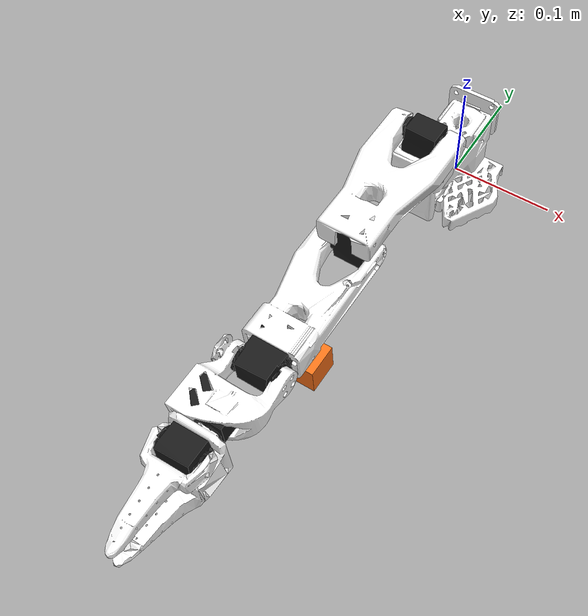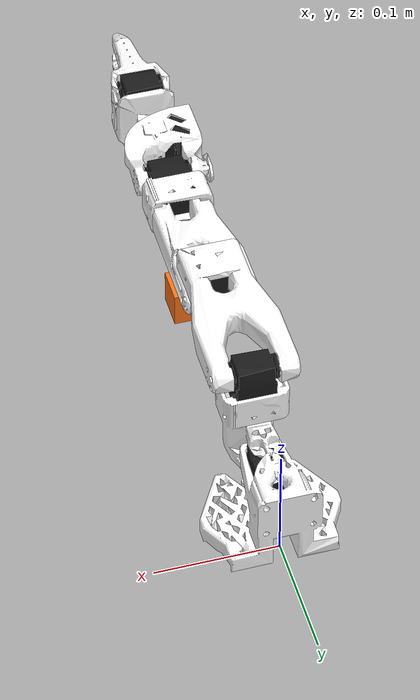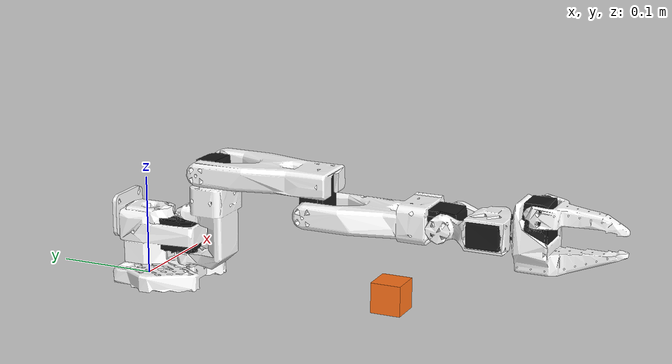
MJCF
<mujoco model="so100">
  <compiler angle="radian" meshdir="assets/"/>

  <option timestep="0.002" cone="elliptic" impratio="10"/>

  <asset>
    <material name="white" rgba="1 1 1 1"/>
    <material name="black" rgba="0.1 0.1 0.1 1"/>

    <mesh name="Base" file="Base.stl"/>
    <mesh name="Base_Motor" file="Base_Motor.stl"/>
    <mesh name="Rotation_Pitch" file="Rotation_Pitch.stl"/>
    <mesh name="Rotation_Pitch_Motor" file="Rotation_Pitch_Motor.stl"/>
    <mesh name="Upper_Arm" file="Upper_Arm.stl"/>
    <mesh name="Upper_Arm_Motor" file="Upper_Arm_Motor.stl"/>
    <mesh name="Lower_Arm" file="Lower_Arm.stl"/>
    <mesh name="Lower_Arm_Motor" file="Lower_Arm_Motor.stl"/>
    <mesh name="Wrist_Pitch_Roll" file="Wrist_Pitch_Roll.stl"/>
    <mesh name="Wrist_Pitch_Roll_Motor" file="Wrist_Pitch_Roll_Motor.stl"/>
    <mesh name="Fixed_Jaw" file="Fixed_Jaw.stl"/>
    <mesh name="Fixed_Jaw_Motor" file="Fixed_Jaw_Motor.stl"/>
    <!-- Collision hulls, inlined by training/scripts/make_hulls.py (one less request each). -->
    <mesh name="Base_Hull" vertex="0.024927677 -0.071374066 0.00077929957 -0.051675427 -0.03444973 0.0024000003 -0.032790926 -0.069750002 1.015413e-09 0.055119155 -0.02047393 3.7006064e-10 0.03325 -0.068954864 -9.9579804e-10 0.054785944 -0.031896445 7.2082198e-07 -0.054062499 -0.018701142 0.0023999993 -0.055540949 -0.029935604 0.013667808 0.042930455 0.014750001 0.013499999 0.05532086 -0.02091657 0.012954884 0.054790084 -0.030886555 0.014461176 0.041722099 0.015809699 0.0015432911 0.01499413 -0.060162288 0.053879995 -0.012608708 -0.058559531 0.058048823 -0.030398296 -0.071076557 0.014222772 0.027958681 -0.070979431 0.014680025 0.032531874 -0.069565244 0.01434164 0.01855 0.020899999 0.083496443 -0.019673967 0.020900002 0.083442527 -0.0032020059 -0.030074627 0.074037447 0.015184885 -0.056350829 0.058158805 0.023499748 0.020899999 0.081446193 -0.04201539 0.015665065 0.013499999 -0.055201503 -0.020933788 0.014017085 -0.042533157 0.015267767 0.00073223286 -0.025329722 0.024900002 0.047128678 -0.01845 0.024900003 0.083496446 -0.023942665 0.0249 0.080920972 0.025335892 0.0249 0.046265039 -0.018449999 0.024900001 0.041496449 0.025197805 0.024899999 0.079360387 0.019362359 0.024900002 0.082009958" face="31 17 21 14 13 7 14 2 0 2 14 7 11 3 24 3 2 24 20 19 13 2 6 24 19 18 13 2 4 0 3 4 2 5 3 9 5 4 3 10 5 9 20 10 21 29 11 24 13 27 7 18 27 13 29 28 11 15 14 0 4 15 0 1 2 7 6 1 7 1 6 2 3 8 9 8 3 11 16 10 20 16 15 4 5 16 4 10 16 5 23 6 7 27 23 7 6 23 24 8 30 9 30 10 9 10 30 21 30 31 21 28 30 11 30 8 11 12 20 13 14 12 13 15 12 14 12 16 20 16 12 15 26 27 18 25 29 24 17 18 19 17 20 21 17 19 20 26 17 31 17 26 18 23 22 24 22 23 27 25 22 27 22 25 24 26 25 27 25 28 29 25 30 28 30 25 31 25 26 31"/>
    <mesh name="Rotation_Pitch_Hull" vertex="-0.021920228 0.085824132 0.016171226 -0.0091350356 0.050424367 -0.0088905108 0.019713447 0.011890187 0.041461128 -0.016710237 0.014735685 0.0478 -0.012724266 0.0020987046 -0.00075005683 -0.0002792762 0.054629602 -0.010990652 0.026734697 0.072451272 0.020465005 -0.02604409 0.058930032 0.021257645 -0.019862164 0.012001488 0.043332048 -0.0263 0.085299997 0.023200003 0.025964151 0.085702181 0.02219782 0.019873788 0.086299994 0.013919106 0.022970091 0.059300002 0.049146827 0.025967917 0.059262004 0.04427997 0.017398222 0.01345261 0.047613841 0.022099999 0.085299999 0.049728204 0.024446826 0.085299999 0.047670092 0.014311329 0.0020885325 0.035109267 -0.014476313 0.002125479 0.035184297 -0.024646825 0.085299997 0.047670092 -0.020215716 0.085727414 0.050605889 -0.026299999 0.085299999 0.042799998 -0.022585124 0.072299995 0.051489137 -0.0263 0.059300002 0.042799998 0.0065641003 0.0060707475 -0.010045526 0.0050566222 0.051800001 -0.010882581 -0.0017459566 0.010790005 -0.012657677 0.010444754 0.0020331982 -0.0063875643 0.0014369616 1.0015385e-09 -0.0098962175 0.0100726 7.9583804e-10 0.00044031935 0.0034503603 -6.3873746e-10 -0.00095791243 -0.0031600976 -1.6757728e-09 -0.0095741794" face="22 12 15 0 11 5 20 22 15 11 20 15 20 0 21 0 20 11 31 4 26 7 4 8 1 5 26 1 0 5 4 1 26 7 1 4 11 10 6 10 13 6 22 3 14 3 22 8 0 9 21 1 9 0 9 1 7 17 2 14 2 13 14 13 2 6 2 27 6 2 17 27 18 3 8 4 18 8 18 17 14 3 18 14 31 18 4 18 31 30 5 25 26 11 25 5 25 11 6 27 25 6 23 7 8 22 23 8 9 23 21 23 9 7 16 13 10 16 11 15 16 10 11 13 12 14 12 22 14 12 16 15 16 12 13 17 29 27 29 18 30 18 29 17 19 20 21 20 19 22 23 19 21 19 23 22 28 31 26 29 28 27 25 24 26 24 25 27 24 28 26 28 24 27 28 29 30 31 28 30"/>
    <mesh name="Upper_Arm_Hull" vertex="-0.032575164 3.2099424e-09 0.011281381 0.034230128 0.035516788 0.0094999992 0.034990552 0.0035796119 0.0020283724 0.018183951 -0.010764878 -0.0065781136 0.033036207 -0.0027568296 -0.010825379 0.032656766 -0.011623137 -0.00027316368 0.025689256 -0.00091617544 -0.012273436 -0.02492963 0.12816997 -0.0082940962 -0.035021319 0.035554748 0.0079499258 -0.021748541 0.12844972 0.012306713 -0.023611125 0.13028571 0.0073075059 0.0078999995 0.13044824 -0.0068955673 -0.0201 0.12990202 -0.010999998 0.027906078 -0.0017552479 0.012291368 0.026646402 0.038616884 0.016806995 0.03341858 -0.0036912037 0.010065113 -0.034981475 -0.0023157282 -0.0078762017 -0.034963796 0.048559372 -0.008159077 -0.035397292 -0.0056627945 -0.0010262428 -0.032769006 -0.0079437397 -0.0083160225 -0.031645083 2.640454e-09 -0.011755286 0.024230126 0.12816997 -0.0095000021 0.0249 0.12486406 -0.0057798381 0.034129228 0.048484821 -0.009450411 0.020837834 0.12808038 -0.011953855 0.023209124 0.13017277 -0.0069803449 0.022971745 0.12918446 0.011466994 -0.018988635 -0.011241573 0.0072432373 -0.03335811 -0.0089008061 0.0067122359 -0.018724974 -0.0056582295 0.011056866 0.018461865 -0.011539109 0.0060156838 -0.018617865 -0.01154101 -0.0060181691" face="15 5 2 26 9 14 9 0 14 0 29 14 0 28 29 20 24 6 24 4 6 4 24 23 5 4 2 4 23 2 19 28 18 19 31 28 19 20 6 8 0 9 8 17 18 28 8 18 8 28 0 15 30 5 30 31 5 1 26 14 15 1 14 1 15 2 23 1 2 1 22 26 22 1 23 12 24 20 12 17 7 17 12 20 3 4 5 31 3 5 4 3 6 3 19 6 19 3 31 10 12 7 10 8 9 12 10 11 17 10 7 8 10 17 26 10 9 10 25 11 25 10 26 25 12 11 12 25 24 29 13 14 13 15 14 30 13 29 13 30 15 17 16 18 16 19 18 16 17 20 19 16 20 21 22 23 24 21 23 25 21 24 22 21 26 21 25 26 28 27 29 27 30 29 31 27 28 30 27 31"/>
    <mesh name="Lower_Arm_Hull" vertex="0.0173 0.02059999 0.11769982 -0.018284021 -0.0083191356 -0.0096299052 -0.023170091 -0.013346823 0.11769982 -0.026011658 0.014340551 0.11832349 -0.020370552 0.020327417 0.11769982 -0.0263 -0.0070000018 0.11769982 -0.016193038 -0.0014253156 0.11920031 -0.03485236 -0.0085540443 0.047771723 0.02249886 -0.013303253 0.11856883 -0.019244837 0.010683496 -0.0073025272 -0.018348485 0.0034312124 -0.011987586 -0.031176704 -0.011633006 -0.0025993797 -0.0020999984 -0.015363266 0.098286355 0.021445084 0.0026157919 -0.011460552 0.02108223 0.01178036 -0.0029528268 0.021312637 0.021899908 0.092585503 0.025183579 0.015685339 0.11843057 0.025003771 -0.0076833985 0.0035505519 0.024250196 0.0057115873 -0.0076929857 0.02249218 -0.0089980012 -0.0072713373 0.025035095 0.0041249157 -0.0016926971 0.025934758 -0.0078214239 0.11831389 0.023993705 -0.014681011 0.10469986 0.02706469 0.0085634347 0.10140561 0.019988003 -0.011839706 -0.00044881392 -0.033161387 -0.0070653555 -0.0091508521 -0.035050088 0.0076816903 -0.0031773805 -0.034856294 0.0083208751 0.035708495 -0.032227188 0.011406867 -0.0021434633 -0.030100001 0.0036842796 -0.011344307 -0.034855279 -2.6323096e-09 -0.008545087 -0.035189398 -0.00095900558 -0.0048958286" face="15 28 4 22 8 12 8 2 12 8 16 6 2 8 6 2 11 12 28 15 14 7 11 2 28 27 4 7 27 31 16 0 4 0 15 4 15 0 16 11 1 19 1 13 19 13 1 10 25 1 11 25 7 31 7 25 11 1 25 10 25 29 10 5 7 2 5 2 6 27 3 4 3 5 6 3 27 7 5 3 7 16 3 6 3 16 4 20 16 23 21 8 22 16 21 23 8 21 16 9 28 14 13 9 14 9 13 10 9 29 28 29 9 10 24 11 19 24 22 12 11 24 12 18 13 14 15 18 14 13 18 19 18 15 16 20 18 16 18 17 19 17 18 20 17 21 22 17 20 23 21 17 23 17 24 19 24 17 22 30 25 31 30 29 25 26 27 28 29 26 28 30 26 29 27 26 31 26 30 31"/>
    <mesh name="Wrist_Pitch_Roll_Hull" vertex="-0.035214152 -0.060872197 -0.012460387 0.026781952 0.011586651 -0.0028175892 0.01809992 0.01186896 -0.0030974127 0.026528642 0.011751637 0.0022962802 -0.035131067 -0.025326033 0.014524886 -0.035522972 -0.025767685 0.0095693043 -0.032800001 0.0078583332 0.0090689897 -0.032800001 0.0030618186 0.011679067 -0.035199999 0.012076457 0.0012139991 0.026389519 0.0093551392 0.0076566707 -0.022187331 0.0028974066 -0.012342451 -0.034400001 0.0077235274 -0.009528218 -0.034878888 -0.025420595 -0.014840832 0.026597605 0.0054493065 -0.010656254 0.028055677 -0.029307391 -0.0066325817 0.0012604685 -0.029978202 0.016176684 -0.017105868 -0.061940406 0.01482437 0.0026790066 -0.055824913 0.015612687 -0.03509282 -0.062292819 0.014599988 -0.0093543546 -0.06041186 0.013268672 -0.017471152 -0.062255368 -0.012929793 0.010375337 -0.052477408 -0.015173015 0.015063908 -0.050384134 -0.01287261 -0.0016196439 -0.057848159 -0.015174712 0.00084158164 -0.034529704 -0.016015646 0.0075342431 -0.054207206 0.012907489 0.025284784 -0.039128415 0.011174288 0.026198118 -0.036348693 -0.010926688 0.027443896 -0.03307205 0.0092117009 0.018867499 -0.046521715 0.014080104 0.0263 0.0024129416 0.01175491 0.021047394 -0.044639003 -0.013341939" face="4 7 8 23 12 24 0 12 23 0 18 5 8 0 5 12 0 8 11 12 8 13 31 24 20 0 23 19 20 23 0 20 18 15 29 30 7 15 30 28 9 30 9 3 8 9 28 14 2 11 8 3 2 8 11 2 13 2 1 13 1 2 3 13 1 14 1 9 14 9 1 3 22 31 29 18 4 5 4 8 5 15 4 18 4 15 7 7 6 8 6 9 8 6 7 30 9 6 30 10 11 13 11 10 12 10 13 24 12 10 24 25 22 29 25 19 23 27 13 14 27 31 13 28 27 14 17 15 18 15 17 29 17 25 29 25 17 19 16 17 18 17 16 19 20 16 18 16 20 19 22 21 31 21 23 24 31 21 24 21 25 23 25 21 22 26 27 28 29 26 30 26 28 30 31 26 29 27 26 31"/>
    <mesh name="Fixed_Jaw_Collision_1" vertex="0.0352 -0.036603112 0.014730104 0.0352 -0.036603112 -0.014730104 0.0352 -0.047065668 -0.011963805 0.0352 -0.047065668 0.011963805 0.016898798 -0.036603111 0.016453406 0.016898798 -0.036603112 -0.016453405 0.014672209 -0.10174749 0.005289707 0.014672209 -0.10174749 -0.0052897067 0.0095524516 -0.10174749 -0.0052897066 0.0095524514 -0.10174749 0.0052897066 0.013427908 -0.10505871 0.0035034052 0.012912502 -0.10643025 4.7078302e-16 0.0090447078 -0.10643025 1.1248376e-14 0.0091934217 -0.10505871 0.0035034053 0.0091934212 -0.10505871 -0.0035034052 0.013427907 -0.10505871 -0.0035034054" face="7 1 2 1 7 5 0 6 3 6 0 4 9 6 4 7 8 5 13 14 12 15 10 11 1 0 2 2 0 3 4 0 5 0 1 5 6 2 3 6 7 2 8 4 5 8 9 4 11 10 12 10 13 12 13 10 9 10 6 9 8 14 9 14 13 9 15 11 12 14 15 12 15 14 8 15 8 7 6 15 7 10 15 6"/>
    <mesh name="Fixed_Jaw_Collision_2" vertex="0.034971641 -0.03891445 0.013885984 -0.019999999 -0.006228365 -0.022148049 0.0048481157 -0.029354282 -0.023988223 -0.025880647 -0.032629841 -0.017600006 0.03432132 -0.0075000007 0.014500001 0.016329357 -0.0075284168 0.023555468 0.03334805 -0.0070401502 0.014959851 -0.019999999 -0.007528462 0.023555497 -0.022029684 -0.0068786821 0.022892633 0.03432132 -0.039533399 0.014637092 0.034798074 -0.039642207 0.013797561 0.018490763 -0.036000006 0.022207508 0.034971641 -0.008560666 0.014060655 0.03497164 -0.0079393468 0.013439337 0.03497164 -0.0081882108 0.013811807 0.03497164 -0.0079393475 -0.013439333 0.007239794 -0.038983964 -0.019101685 0.018032501 -0.038598083 -0.02060168 -0.029749279 -0.0089999971 0.016225199 -0.025080227 -0.0062283653 0.020370403 -0.023535308 -0.0062283653 0.021341154 0.033348051 -0.0079393469 -0.015560662 0.016460759 -0.0082235418 -0.023897773 0.034321319 -0.0070401503 0.013811806 0.032200001 -0.0062283646 0.014148036 0.03334805 -0.0064393354 0.014060656 0.03432132 -0.0075000011 -0.014499998 0.034321319 -0.0081882112 -0.014959848 0.03497164 -0.0081882118 -0.013811788 0.034971641 -0.0085606658 -0.014060666 0.034321319 -0.0070401514 -0.013811788 0.033348051 -0.0070401516 -0.014959848 0.015924204 -0.0064019191 -0.022499999 -0.021813112 -0.0062283654 0.021943757 0.033348049 -0.039120711 0.015608677 0.034321321 -0.038901009 0.014996597 0.034971639 -0.038572215 0.014080564 0.03334805 -0.0079393478 0.015560666 0.034321319 -0.0081882116 0.014959851 0.035190022 -0.03464935 -0.013244456 0.035189979 -0.014150792 -0.013245007 -0.02905456 -0.029047229 0.018799999 0.0091144627 -0.036899946 0.021963517 0.033348049 -0.039946951 0.015138992 0.0337 -0.040217542 0.014732847 0.018259342 -0.038080282 0.021192619 0.017897401 -0.038771637 0.020249733 -0.0046423053 -0.029346205 0.023990402 -0.0022280687 -0.036776461 0.021999457 0.018569059 -0.036776461 0.021999458 -0.025880647 -0.03262984 0.018800001 -0.027685107 -0.031031228 0.0188 0.0069029977 -0.038058631 -0.021185911 0.0071513567 -0.038740986 -0.02025426 0.0075495654 -0.038718917 -0.020369535 0.0065423192 -0.037067674 -0.021718076 -0.023746049 -0.033750169 -0.017600005 0.0075495652 -0.037928365 -0.021399816 0.013014614 -0.036874942 -0.021971261 0.0075495654 -0.03677646 -0.021999454 -0.021813111 -0.0062283656 -0.021943768 -0.027943762 -0.0062283651 -0.015813118 -0.027685107 -0.031031228 -0.017600006 -0.022174395 -0.010148057 -0.023526644 -0.029054559 -0.029047229 -0.017600005 -0.022225211 -0.0089999969 0.023749271 -0.029909419 -0.02679316 0.0188 -0.0302 -0.024400003 0.018799999 0.035098334 -0.014680632 -0.013774371 -0.019999999 -0.0068786818 -0.023121319 0.016345715 -0.007500001 -0.023598081 0.03334805 -0.0064393352 -0.014060667 0.032200002 -0.0062283648 -0.014148047 0.018338876 -0.037928365 0.021399806 -0.0022280686 -0.038999997 0.019101688 -0.0026225637 -0.03897395 0.019101689 0.034971638 -0.03891445 -0.013885996 0.035098328 -0.034119286 -0.0137744 -0.025687051 -0.0068786823 -0.021131343 -0.025080227 -0.0062283656 -0.020370399 -0.023535307 -0.0062283656 -0.021341136 -0.028218027 -0.0068786814 -0.017957588 -0.028892629 -0.0068786825 -0.016029691 -0.027131336 -0.0068786817 -0.019687047 -0.027341141 -0.0062283655 -0.017535305 -0.026370402 -0.0062283656 -0.019080227 -0.029749281 -0.008999997 -0.01622521 -0.029526642 -0.0078519521 -0.016174397 -0.029009689 -0.0089999971 -0.018338835 -0.028803941 -0.0078519518 -0.018239757 -0.028892632 -0.0068786818 0.016029695 -0.029526645 -0.0078519515 0.016174385 -0.022174394 -0.0078519521 -0.023526644 -0.02222521 -0.0089999971 -0.023749283 -0.02 -0.0078519519 -0.023771634 -0.024239756 -0.0078519519 -0.022803938 -0.023957593 -0.0068786818 -0.022218024 -0.022029684 -0.0068786815 -0.02289263 -0.02 -0.0075284617 -0.023555493 -0.026234898 -0.0089999965 -0.021818315 -0.024338838 -0.0089999966 -0.023009693 -0.026092519 -0.007851952 -0.021639769 -0.027639775 -0.0078519515 -0.020092524 -0.027818314 -0.0089999964 -0.020234904 -0.030200002 -0.024400003 -0.017600005 -0.02990942 -0.02679316 -0.017600006 -0.027639774 -0.0078519521 0.020092527 -0.026234898 -0.0089999967 0.02181832 -0.027818314 -0.0089999964 0.020234892 -0.029009687 -0.0089999971 0.018338839 -0.028803942 -0.0078519517 0.018239745 -0.027131336 -0.0068786824 0.019687036 -0.024239757 -0.0078519512 0.022803941 -0.024338837 -0.0089999966 0.023009697 -0.022174394 -0.0078519522 0.023526649 -0.026092518 -0.007851952 0.021639773 -0.023957593 -0.0068786822 0.022218028 -0.025687049 -0.006878682 0.021131346 -0.0029265794 -0.038038291 0.021189133 -0.0022280686 -0.037957571 0.021361747 -0.0022280687 -0.037928365 0.021399805 -0.0027023757 -0.038728318 0.020255515 -0.0022280686 -0.038718917 0.02036954 -0.02374605 -0.033750169 0.018799999 -0.0032523839 -0.037035562 0.021724353 0.034971638 -0.038572215 -0.014080545 -0.02734114 -0.0062283658 0.017535308 -0.028218024 -0.0068786816 0.017957607 -0.026370403 -0.0062283655 0.019080232 -0.027943761 -0.0062283659 0.015813122 0.033348048 -0.039120712 -0.015608689 0.033348049 -0.039946951 -0.015138975 0.018490763 -0.036000006 -0.022207505 0.018569058 -0.03677646 -0.021999455 0.018454013 -0.037500002 -0.021699762 0.034321318 -0.039533399 -0.014637103 0.034798073 -0.039642207 -0.013797572 0.033700002 -0.040217541 -0.014732858 0.034321318 -0.038901009 -0.014996594 0.016499999 -0.0089999965 -0.023999994 0.033348052 -0.038184367 -0.015771633 0.0165 -0.029310338 -0.023999994 0.03334805 -0.0089999972 -0.015771633 0.034971638 -0.0078519517 -0.013000002 0.035200001 -0.0089999967 -0.013000003 0.035200001 -0.0089999965 0.012999991 0.03497164 -0.0078519525 0.012999991 -0.030400001 -0.033799999 0.014500001 -0.027399999 -0.036800004 0.014500002 -0.0274 -0.036800005 -0.014299994 -0.0304 -0.033799998 -0.014299994 -0.0304 -0.014999994 0.014500002 -0.030399999 -0.014999994 -0.014299994 -0.02 -0.0089999968 0.023999998 0.0165 -0.029310338 0.023999999 -0.0044016731 -0.029310338 0.023999998 0.0165 -0.0089999968 0.023999998 0.01641234 -0.007851952 0.023771653 -0.019999999 -0.0078519513 0.023771654 -0.019999999 -0.0089999967 -0.023999994 0.0051147253 -0.029310338 -0.023999994 -0.016 -0.014751592 -0.023999994 0.011123148 -0.00099999462 -0.0045028387 0.003077155 7.2794501e-09 -0.011598757 0.0030771549 5.911458e-09 0.011598745 0.011123148 -0.00099999567 0.0045028418 -0.02 -0.0062283656 0.022148052 -0.019999999 -0.0068786817 0.023121306 0.016162707 -0.0068786828 0.023121306 0.015789103 -0.0062283651 0.022148053 0.035198332 -0.033925005 0.013100008 0.035200001 -0.038184367 0.012999991 0.03519833 -0.014875003 0.013100007 0.034971641 -0.0089999971 0.014148036 0.03497164 -0.038184368 0.014148036 0.035199999 -0.040481247 -0.00064951775 0.035200002 -0.038856275 0.012519964 0.035199999 -0.038856276 -0.012519947 0.035200001 -0.038184367 -0.013000002 0.0352 -0.040481248 0.0006495208 0.014999999 -0.040481246 0.00064952075 0.015 -0.040481248 -0.00064951777 0.015999999 -0.040428139 -0.015075197 0.032200003 -0.04042814 -0.015075198 0.034321319 -0.0068786825 0.012999991 0.034321319 -0.0068786818 -0.013000002 0.00049534939 5.9537421e-09 0.011989781 -0.011381667 6.436036e-09 -0.0038023204 -0.0095903884 6.8721611e-09 -0.0072127943 -0.003329258 7.7212103e-09 -0.011528915 -0.0068107673 6.4959452e-09 -0.0098799522 0.00049534964 6.6816e-09 -0.011989778 -0.0068107667 6.4533261e-09 0.0098799556 -0.0095903887 7.013455e-09 0.0072127968 -0.0033292584 5.9899177e-09 0.011528919 -0.011381667 7.0865417e-09 0.0038023232 -0.012000001 5.9785712e-09 -5.9701703e-09 0.034321321 -0.038184367 0.015121321 0.034321319 -0.0089999973 0.01512132 0.033348051 -0.0089999968 0.015771637 0.033348051 -0.038184367 0.015771637 0.032200002 -0.040428139 0.015075185 0.015999999 -0.040428139 0.015075187 -0.030000002 -0.0089999972 -0.014000004 -0.030000002 -0.0089999964 0.014000008 -0.029771638 -0.0078519518 0.014000008 -0.029771638 -0.0078519517 -0.014000004 0.033348049 -0.0062283659 -0.013000002 0.033348049 -0.0062283647 0.012999991 0.035117305 -0.034299992 -0.013699522 0.035117306 -0.0145 -0.013699522 0.035169744 -0.014225476 -0.013424998 0.035169743 -0.034574516 -0.013424998 -0.02912132 -0.0068786817 -0.014000005 -0.02912132 -0.0068786818 0.014000008 -0.028148053 -0.0062283652 0.014000008 -0.028148053 -0.0062283651 -0.014000004 0.034321318 -0.038184367 -0.015121317 0.034971641 -0.038184368 -0.014148047 0.034971638 -0.0089999969 -0.014148048 0.034321319 -0.008999997 -0.015121317" face="182 181 149 104 150 152 31 70 32 208 165 164 20 8 33 194 20 33 10 179 176 179 10 44 0 176 171 0 10 176 1 191 32 70 69 32 69 1 32 142 139 22 191 163 32 150 62 149 62 3 149 161 62 63 62 161 3 163 72 32 157 156 37 6 157 37 7 8 158 7 167 8 116 20 117 20 116 8 194 192 20 49 11 154 11 200 154 174 36 171 36 0 171 0 36 10 36 35 10 6 38 4 38 6 37 38 14 4 173 172 145 123 50 148 202 46 122 140 132 141 141 132 133 16 182 149 3 56 149 54 183 182 183 131 137 18 204 151 67 18 151 67 147 66 147 67 151 65 153 158 8 114 158 114 65 158 116 114 8 60 189 191 1 60 191 60 69 97 69 60 1 215 196 216 196 61 216 211 219 144 27 220 142 105 150 104 2 161 160 161 2 3 141 2 160 2 141 133 59 2 133 2 56 3 2 59 56 139 159 22 23 6 4 14 23 4 25 23 208 23 25 6 25 169 168 6 25 168 143 30 185 5 6 168 5 157 6 167 5 168 5 167 7 157 5 158 5 7 158 8 166 33 167 166 8 10 9 44 9 35 44 35 9 10 43 34 49 35 34 44 34 43 44 34 11 49 11 34 200 12 173 145 14 12 145 12 14 38 12 198 173 198 12 38 146 13 145 13 14 145 23 13 146 13 23 14 170 174 171 39 144 178 15 143 144 15 144 28 30 15 28 15 30 143 51 147 148 50 51 148 73 43 49 202 75 180 75 148 149 181 75 149 180 75 181 124 50 123 53 54 182 16 53 182 53 16 149 175 136 177 136 175 137 175 183 137 177 76 178 136 76 177 17 183 54 57 17 54 134 131 183 17 134 183 134 17 57 134 57 59 109 18 67 91 205 204 18 91 204 91 109 110 109 91 18 189 80 190 60 80 189 84 188 85 103 88 89 88 103 104 20 19 117 19 128 117 192 19 20 19 192 193 128 19 193 128 111 117 196 187 61 84 187 188 187 84 61 219 68 77 144 29 28 219 29 144 29 219 220 27 29 220 21 142 22 21 27 142 27 21 31 70 21 22 31 21 70 64 62 150 105 64 150 94 70 22 159 94 22 184 23 146 23 184 208 24 208 164 24 25 208 169 24 164 25 24 169 26 27 31 30 26 31 26 30 28 29 26 28 26 29 27 71 30 31 71 31 32 72 71 32 30 71 185 186 166 169 186 169 164 186 194 33 166 186 33 34 197 200 197 34 35 197 36 174 36 197 35 156 199 37 199 38 37 199 198 38 40 211 144 39 40 144 212 39 178 40 212 211 212 40 39 41 65 66 41 51 65 147 41 66 51 41 147 46 45 122 45 73 122 48 42 49 42 73 49 124 120 48 120 42 48 42 120 73 43 201 44 73 201 43 45 201 73 201 45 46 202 201 46 201 179 44 74 202 122 74 75 202 47 124 48 47 49 154 47 154 155 47 48 49 124 47 50 47 51 50 51 47 65 153 47 155 47 153 65 53 52 54 52 57 54 52 53 149 56 52 149 57 52 56 59 55 56 55 57 56 57 55 59 218 212 178 218 219 77 58 59 133 134 58 133 58 134 59 80 79 190 79 188 190 188 79 85 96 60 97 96 80 60 82 87 206 61 82 216 87 82 89 84 82 61 87 203 206 214 90 215 91 90 205 90 214 205 102 103 89 62 93 63 64 93 62 93 159 161 93 161 63 93 94 159 95 100 101 100 64 105 100 93 64 107 108 67 108 109 67 113 115 107 114 113 65 65 113 66 113 67 66 113 107 67 210 219 211 210 68 219 68 210 77 98 69 70 94 98 70 69 98 97 71 207 185 162 207 163 207 72 163 207 71 72 73 119 122 120 119 73 121 74 122 74 121 75 75 121 148 76 125 178 125 218 178 125 76 136 209 218 77 218 209 212 210 209 77 78 79 80 96 78 80 78 83 85 79 78 85 102 78 101 78 102 83 78 95 101 78 96 95 213 82 206 82 213 216 82 81 89 81 102 89 102 81 83 81 82 84 81 84 85 83 81 85 203 86 152 86 203 87 86 104 152 86 88 104 88 86 89 86 87 89 90 129 215 129 195 196 129 196 215 127 111 128 127 129 90 127 91 110 127 90 91 93 92 94 92 100 95 100 92 93 92 96 97 96 92 95 98 92 97 92 98 94 100 99 101 99 102 101 102 99 103 103 99 104 99 105 104 99 100 105 115 106 107 106 108 107 109 106 110 108 106 109 106 127 110 127 106 111 106 115 117 111 106 117 112 113 114 113 112 115 112 114 116 112 116 117 115 112 117 118 119 120 121 118 148 119 118 122 118 121 122 118 123 148 118 124 123 118 120 124 125 138 218 138 125 136 126 127 128 127 126 129 129 126 195 195 126 193 126 128 193 138 217 218 217 130 140 130 217 138 131 130 137 130 138 137 132 130 133 130 132 140 130 134 133 134 130 131 135 136 137 138 135 137 135 138 136 139 140 141 140 139 142 144 143 145 143 146 145 148 147 149 147 150 149 147 151 152 150 147 152 154 153 155 156 153 154 153 157 158 157 153 156 159 139 141 159 141 160 161 159 160 162 163 164 165 162 164 166 167 168 169 166 168 145 170 171 172 170 145 170 173 174 170 172 173 176 175 171 175 177 178 175 145 171 179 175 176 144 175 178 175 144 145 175 180 181 180 175 179 182 175 181 183 175 182 143 184 146 184 143 185 187 186 188 186 189 190 188 186 190 163 186 164 189 186 191 192 186 193 186 163 191 186 192 194 186 195 193 195 186 196 186 187 196 173 197 174 198 197 173 199 156 154 200 199 154 199 197 198 197 199 200 201 180 179 201 202 180 151 203 152 204 203 151 205 203 204 206 203 205 207 184 185 184 207 208 207 162 165 208 207 165 209 210 211 212 209 211 213 206 205 214 213 205 213 215 216 213 214 215 218 217 219 219 217 220 217 140 142 220 217 142"/>
    <mesh name="Moving_Jaw" file="Moving_Jaw.stl"/>
    <mesh name="Moving_Jaw_Collision_1" vertex="-0.0083 -0.061999999 0.0074428942 0.0039745243 -0.059835002 0.0074428946 0.0039745241 -0.059835002 -0.0074428943 -0.0083 -0.061999999 -0.0074428946 -0.011167693 -0.078869634 -0.0051482991 -0.011167693 -0.078869633 0.0051482995 -0.0056160022 -0.078869633 0.0051482989 -0.0056160022 -0.078869633 -0.0051482997 -0.011630815 -0.081943646 0.0016814554 -0.011630815 -0.081943646 -0.0016814554 -0.0071648352 -0.081943646 0.0016814554 -0.007164835 -0.081943646 -0.0016814554" face="7 3 2 4 7 9 7 4 3 0 6 1 5 6 0 7 11 9 8 10 5 10 6 5 0 1 2 3 0 2 4 0 3 4 5 0 1 6 2 6 7 2 4 8 5 8 4 9 6 10 7 10 11 7 10 8 9 11 10 9"/>
    <mesh name="Moving_Jaw_Collision_2" vertex="-0.0082999996 -0.019525151 0.010775618 0.0076989595 -0.019525151 0.010775618 0.0076989595 -0.019525151 -0.010775618 -0.0082999996 -0.019525151 -0.010775618 0.0039745242 -0.059835002 -0.0074428944 0.0039745242 -0.059835002 0.0074428944 -0.0083 -0.061999999 0.0074428944 -0.0083 -0.061999999 -0.0074428944" face="2 7 3 4 7 2 0 6 1 6 5 1 0 1 2 0 2 3 1 4 2 5 4 1 6 0 3 7 6 3 6 4 5 4 6 7"/>
    <mesh name="Moving_Jaw_Collision_3" vertex="-0.0098660257 -0.021412295 0.017061775 0.0065397081 -0.019789151 -0.019329029 -0.0095000001 -0.01967748 0.019867555 -0.0098660249 -0.020178314 0.019095311 -0.0098660257 -0.01950847 0.019542887 -0.0098660248 -0.020735407 0.018513365 -0.0095000001 -0.020413591 0.019375702 0.0075120881 -0.020678984 0.016260947 0.0080092225 -0.019316114 0.016260947 0.0080246145 -0.019170852 0.016833246 0.0080670887 -0.018770002 0.017267144 0.0075385504 -0.020371938 0.017512896 0.008103466 -0.018426697 0.017420057 0.0084176575 -0.015179993 -0.018524719 0.0037513659 -0.019080311 -0.020061048 0.0064433767 -0.021477308 -0.017191373 0.006497659 -0.020525107 -0.018759669 -0.0094999996 -0.02148507 0.017979323 -0.0094999993 -0.021769645 0.017140995 -0.009866025 -0.021153338 0.017824635 -0.0094999998 -0.021025796 0.018736188 0.006352529 -0.0072567379 0.023434166 -0.0089999994 -0.018887039 0.020317836 0.0063525291 -0.0072567379 -0.023234167 0.0081034659 -0.018426698 -0.017220057 0.0076249384 -0.01936971 -0.018377542 0.0086733777 -0.012358417 -0.01952327 0.0076771813 -0.01876377 -0.018646601 0.0085411986 -0.013652168 -0.019153815 0.0088273678 -0.011110738 -0.019749073 0.0050394587 -0.021552922 0.018022345 -0.0089999996 -0.021606491 0.018035944 -0.0089999998 -0.021900443 0.017169994 0.0037513659 -0.019080311 0.020261048 0.0068655883 -0.0068522598 0.023504395 0.0076125644 -0.019513246 0.018484951 0.0064584797 -0.021212134 0.018030882 -0.0098660253 -0.01875763 -0.019634873 0.0068655886 -0.0068522599 -0.023304394 0.0051201671 -0.018887039 -0.020117837 0.0080092219 -0.019316114 -0.016060947 0.0078592256 -0.020731698 0.010717282 0.0075120875 -0.020678984 -0.016060947 0.0080486274 -0.018944228 -0.016929411 0.0080741071 -0.018703777 -0.017107204 0.0080152869 -0.019258877 -0.016427132 0.0075802118 -0.019888569 -0.017971819 0.0075224927 -0.020558255 -0.016860233 0.0034063199 -0.019533867 -0.019886351 0.0035588745 -0.019415516 -0.019937814 0.0026562963 -0.019539194 0.020083931 0.0025019491 -0.019422895 0.020134732 0.0099928561 0.00037790935 -0.023060826 0.009999999 -4.0146885e-06 0.022947931 0.0076771815 -0.018763769 0.018846602 0.0075585583 -0.0056455238 0.02367522 0.0076497354 -0.0049416674 0.023857412 0.0072924322 -0.0062920698 0.023569446 0.0075585347 -0.0042539741 0.024099935 0.0050837901 -0.020088606 0.019782635 0.006588812 -0.018931711 0.019903772 0.005120167 -0.018887039 0.020317836 0.0065280763 -0.019992584 0.019399383 0.0035588744 -0.019415516 0.020137815 0.0034062069 -0.019533934 0.020086321 0.0032250219 -0.019610343 0.020050756 0.0050413156 -0.021491587 0.018263992 -0.0089999995 -0.020499708 0.019478335 -0.0089999995 -0.019739344 0.019986393 -0.0089999997 -0.021132084 0.018817745 -0.0094999995 -0.018852364 0.020188426 -0.0098660251 -0.01875763 0.019834872 0.0050319886 -0.021799672 -0.017342594 0.0075585587 -0.0056455238 -0.02347522 0.0076497314 -0.004940472 -0.023657785 0.0075585585 -0.004253971 -0.02389993 0.0072924249 -0.0062920819 -0.023369445 0.0065888121 -0.018931711 -0.019703772 -0.0089999995 -0.021900443 -0.016969993 -0.0098660255 -0.021412294 -0.016861774 -0.0098660253 -0.020178314 -0.01889531 -0.0098660255 -0.020735407 -0.018313364 -0.0098660255 -0.01950847 -0.019342889 -0.0094999998 -0.02148507 -0.017779325 -0.0098660252 -0.021153338 -0.017624635 -0.0095000001 -0.021769645 -0.016940996 -0.0089999997 -0.021606491 -0.017835945 -0.0089999996 -0.021132084 -0.018617746 -0.0095000001 -0.021025795 -0.018536187 -0.0094999997 -0.020413591 -0.019175702 0.0050653288 -0.020698396 -0.019100569 -0.0089999995 -0.019739345 -0.019786392 0.0032250218 -0.019610344 -0.019850756 0.0050908075 -0.019856824 -0.019722844 -0.0089999996 -0.020499708 -0.019278334 0.0026561742 -0.019539123 -0.019883963 0.002501949 -0.019422894 -0.019934732 -0.0089999998 -0.018887039 -0.020117836 -0.0095000001 -0.01967748 -0.019667557 -0.0094999996 -0.018852365 -0.019988427 0.0047554041 0.008796939 -0.0223 0.0019904357 0.0097999067 0.021099999 0.004755404 0.0087969385 0.021099999 0.0019904356 0.0097999063 -0.022299999 0.0071089828 0.007032949 -0.022299999 0.0071089827 0.0070329485 0.0211 -0.00094672517 0.0099550849 -0.0223 -0.00094672515 0.0099550853 0.021099999 -0.0098660253 -0.0215 0.016260946 -0.0099999995 -0.021 0.016260945 -0.01 -0.021 -0.016060947 -0.009866025 -0.021500001 -0.016060947 -0.0095674503 0.002909277 0.021099999 -0.0095674503 0.0029092774 -0.0223 -0.0083072212 0.0055668733 -0.022299998 -0.0083072213 0.0055668728 0.021099999 -0.0096202748 0.0027295273 -0.0239 -0.0096202745 0.0027295274 0.0241 -0.0099999995 -1.6073776e-10 0.0241 -0.0099999997 1.4620101e-10 -0.023900001 0.0088475638 0.0046605385 -0.0223 0.0088475638 0.004660539 0.0211 -0.0038019849 0.0092490489 -0.022299999 -0.0038019849 0.0092490494 0.0211 -0.0094999997 -0.021866025 -0.016060946 -0.0095000002 -0.021866026 0.016260947 -0.0089999997 -0.022000001 0.016260946 -0.0089999997 -0.022 -0.016060947 0.0050259231 -0.022 -0.016060946 0.0050259232 -0.022 0.016260946 -0.0063283349 0.0077428792 -0.0223 -0.006328335 0.0077428787 0.021099999 0.0064335894 -0.021649242 0.016260946 0.0064335898 -0.021649242 -0.016060946 -0.0099999996 -0.00090810751 -0.023900001 0.009897844 0.0014257261 -0.0239 0.0097546532 0.00084218126 -0.0239 -0.0089999998 -0.0047718105 -0.023900001 0.0012724518 -0.0047718105 -0.023900001 -0.0097071075 -0.003640158 -0.023900001 -0.0098660252 -0.0028399589 -0.023900001 -0.0016842464 0.0065821798 -0.023900001 0.0090436198 -0.0014878647 -0.0239 0.0098518063 0.0017152043 -0.0239 -0.00082421176 0.0066868742 -0.0239 -0.0091305268 -0.004738756 -0.023900001 0.008248222 -0.003271173 -0.023899999 -0.009258819 -0.0046401583 -0.023900001 -0.0012661557 0.0067325018 -0.0239 -0.0099659256 -0.0019081073 -0.0239 -0.0094999995 -0.0042541726 -0.023900001 0.0096824587 0.0025000003 -0.020300001 0.009682459 0.0024999998 0.019099999 0.0098207423 0.0018849456 -0.022299999 0.0098207424 0.001884946 0.0211 0.0098518056 0.0017152036 0.0241 0.0097910788 -0.0024999999 -0.020300001 0.0099459792 -0.0010380229 0.022088282 0.0097910791 -0.0024999999 0.019099999 0.0099459789 -0.0010380232 -0.021888283 0.0098978443 0.0014257263 0.0241 -0.00992388 -0.0023866826 0.024100001 -0.0016842463 0.00658218 0.0241 -0.0012661558 0.006732502 0.0241 -0.0099999993 -0.00090810736 0.0241 -0.00082421179 0.0066868734 0.024100001 -0.0089999995 -0.0047718105 0.0241 0.0012724518 -0.0047718105 0.024099999 0.0082482223 -0.0032711731 0.024099999 -0.0093826839 -0.004477704 0.024100001 -0.0091950903 -0.0046975706 0.0241 0.0090436201 -0.0014878645 0.024100001 -0.0090980176 -0.0047532059 0.0241 0.0097546535 0.00084218142 0.0241 -0.0097071073 -0.0036401581 0.0241 -0.0099999996 -0.019277595 -0.018899381 -0.01 -0.019277595 0.01909938 -0.0099999999 -0.018628221 0.019351908 -0.01 -0.020924147 0.016953554 -0.0099999998 -0.020700185 0.017613325 -0.0099999995 -0.020338731 0.018208985 -0.0099999999 -0.01985692 0.01871229 -0.0099999994 -0.020924147 -0.016753554 -0.0099999999 -0.018628221 -0.019151908 -0.0099999996 -0.020700185 -0.017413325 -0.0099999995 -0.020338731 -0.018008985 -0.0099999997 -0.019856921 -0.018512289" face="102 155 105 123 163 107 157 159 53 159 52 53 163 101 107 102 165 155 101 165 102 165 101 163 117 131 115 131 117 123 116 113 114 143 100 104 155 121 105 157 12 158 12 157 53 13 29 159 29 52 159 30 129 36 30 32 129 16 72 90 178 19 179 108 178 109 112 117 115 123 162 163 117 162 123 70 68 22 58 167 21 75 23 138 145 137 97 137 23 97 23 137 138 144 100 143 100 144 103 120 143 104 116 122 141 47 45 42 10 41 158 12 10 158 10 11 9 54 12 53 27 135 52 135 27 136 27 142 136 142 27 77 178 0 19 108 0 178 18 32 31 0 18 19 18 108 125 18 0 108 126 18 125 18 126 32 32 126 129 96 97 14 133 47 42 41 133 42 93 1 90 1 16 90 1 93 77 16 1 25 27 1 77 1 27 25 46 16 25 20 5 19 69 20 31 20 67 6 67 20 69 70 71 4 71 177 4 2 4 6 2 70 4 70 2 68 67 2 6 2 67 68 22 61 21 33 61 22 68 51 22 51 33 22 168 167 58 177 176 4 176 181 4 181 180 5 19 180 179 5 180 19 181 3 4 3 181 5 4 3 6 3 20 6 20 3 5 97 39 14 23 39 97 93 39 77 146 142 77 146 75 138 183 149 37 149 140 37 148 106 103 144 148 103 148 122 106 122 148 141 152 121 155 130 116 114 130 122 116 132 11 36 129 132 36 132 133 41 7 41 9 11 7 9 7 132 41 132 7 11 24 13 159 24 27 13 27 24 25 41 8 9 8 10 9 10 8 41 10 35 11 11 35 36 35 10 12 54 35 12 28 29 13 27 28 13 49 96 14 39 49 14 49 39 93 16 15 72 15 133 128 72 15 128 133 15 47 15 46 47 46 15 16 18 17 19 17 20 19 17 18 31 20 17 31 34 58 21 61 34 21 60 171 168 171 60 54 166 172 22 166 22 21 167 166 21 170 70 22 172 170 22 84 185 81 38 23 75 38 39 23 74 146 77 146 74 75 140 139 37 147 145 97 134 149 183 154 152 155 120 151 143 44 24 159 41 44 158 44 46 25 24 44 25 26 27 52 26 28 27 29 26 52 28 26 29 50 51 68 65 50 68 66 30 36 66 69 31 32 66 31 30 66 32 51 63 33 63 61 33 173 171 54 56 168 58 56 60 168 57 34 61 60 57 61 34 57 58 62 35 54 60 62 54 35 62 36 62 66 36 174 71 70 82 183 37 99 139 150 139 99 37 99 82 37 82 99 98 147 99 150 99 147 97 76 38 75 39 76 77 38 76 39 151 153 143 156 44 159 44 156 158 40 44 41 44 40 45 40 41 42 45 40 42 43 44 45 44 43 46 43 45 47 46 43 47 95 48 92 48 49 93 92 48 93 49 48 96 48 95 96 64 50 65 50 64 51 64 63 51 52 160 53 160 54 53 160 173 54 135 160 52 56 55 60 55 57 60 55 56 58 57 55 58 59 60 61 59 62 60 63 59 61 64 59 63 59 64 65 62 59 66 67 59 68 59 65 68 59 67 69 66 59 69 170 169 70 169 174 70 174 161 71 177 161 164 71 161 177 182 111 110 182 79 111 79 182 84 78 86 72 127 78 128 78 72 128 88 84 81 72 87 90 86 87 72 88 87 86 185 186 81 74 73 75 73 76 75 73 74 77 76 73 77 184 185 84 182 184 84 124 85 127 85 78 127 85 124 111 79 85 111 85 79 84 78 85 86 89 82 98 82 175 183 186 175 82 186 80 81 80 186 82 89 80 82 80 88 81 80 89 88 88 83 84 83 85 84 83 88 86 85 83 86 94 87 88 89 94 88 87 94 90 94 93 90 94 89 98 91 92 93 94 91 93 91 95 92 96 91 97 95 91 96 91 94 98 91 99 97 99 91 98 100 101 102 101 100 103 104 100 105 100 102 105 106 101 103 101 106 107 108 109 110 111 108 110 113 112 114 112 115 114 116 112 113 112 116 117 118 116 119 116 118 117 120 104 105 121 120 105 106 122 107 122 123 107 124 108 111 108 124 125 124 126 125 126 124 127 126 127 128 129 126 128 115 130 114 131 130 115 122 130 123 130 131 123 132 129 128 133 132 128 116 134 119 134 135 136 137 134 138 134 139 140 134 116 141 142 134 136 135 134 143 134 144 143 134 137 145 134 146 138 147 134 145 146 134 142 148 134 141 149 134 140 134 148 144 139 134 150 134 147 150 151 120 121 152 151 121 153 154 155 143 153 155 153 151 152 154 153 152 156 157 158 157 156 159 160 135 143 160 143 155 162 161 163 161 118 164 165 161 155 161 165 163 161 162 117 118 161 117 161 166 167 168 161 167 161 169 170 171 161 168 166 161 172 161 170 172 173 161 171 161 160 155 160 161 173 169 161 174 109 175 110 175 176 177 175 178 179 175 177 164 118 175 164 178 175 109 175 118 119 180 175 179 134 175 119 176 175 181 175 180 181 175 182 110 175 134 183 184 175 185 175 186 185 175 184 182"/>
  </asset>

  <default>
    <default class="so_arm100">
      <joint frictionloss="0.1" armature="0.1"/>
      <position kp="50" dampratio="1" forcerange="-3.5 3.5"/>
      <default class="Rotation">
        <joint axis="0 1 0" range="-1.92 1.92"/>
      </default>
      <default class="Pitch">
        <joint axis="1 0 0" range="-3.32 0.174"/>
      </default>
      <default class="Elbow">
        <joint axis="1 0 0" range="-0.174 3.14"/>
      </default>
      <default class="Wrist_Pitch">
        <joint axis="1 0 0" range="-1.66 1.66"/>
      </default>
      <default class="Wrist_Roll">
        <joint axis="0 1 0" range="-2.79 2.79"/>
      </default>
      <default class="Jaw">
        <joint axis="0 0 1" range="-0.174 1.75"/>
      </default>
      <default class="visual">
        <geom type="mesh" contype="0" conaffinity="0" density="0" group="2" material="white"/>
        <default class="motor_visual">
          <geom material="black"/>
        </default>
      </default>
      <default class="collision">
        <geom group="3" type="mesh" material="white" contype="2" conaffinity="1"/>
        <default class="finger_collision">
          <geom type="box" solimp="2 1 0.01" solref="0.01 1" friction="1 0.005 0.0001"/>
        </default>
      </default>
    </default>
  </default>

  <worldbody>
    <geom name="floor" type="plane" size="1 1 0.05" group="3" solref="0.004 1" solimp="0.95 0.99 0.001"/>
    <body name="Base" childclass="so_arm100">
      <geom type="mesh" mesh="Base" class="visual"/>
      <geom type="mesh" mesh="Base_Motor" class="motor_visual"/>
      <geom type="mesh" mesh="Base_Hull" class="collision"/>
      <body name="Rotation_Pitch" pos="0 -0.0452 0.0165" quat="0.707105 0.707108 0 0">
        <inertial pos="-9.07886e-05 0.0590972 0.031089" quat="0.363978 0.441169 -0.623108 0.533504" mass="0.119226"
          diaginertia="5.94278e-05 5.89975e-05 3.13712e-05"/>
        <joint name="Rotation" class="Rotation"/>
        <geom type="mesh" mesh="Rotation_Pitch" class="visual"/>
        <geom type="mesh" mesh="Rotation_Pitch_Motor" class="motor_visual"/>
        <geom type="mesh" mesh="Rotation_Pitch_Hull" class="collision"/>
        <body name="Upper_Arm" pos="0 0.1025 0.0306" euler="1.57079 0 0">
          <inertial pos="-1.72052e-05 0.0701802 0.00310545" quat="0.50104 0.498994 -0.493562 0.50632" mass="0.162409"
            diaginertia="0.000213312 0.000167164 7.01522e-05"/>
          <joint name="Pitch" class="Pitch"/>
          <site name="shoulder" pos="0 0 0" size="0.005" group="4"/>
          <geom type="mesh" mesh="Upper_Arm" class="visual"/>
          <geom type="mesh" mesh="Upper_Arm_Motor" class="motor_visual"/>
          <geom type="mesh" mesh="Upper_Arm_Hull" class="collision"/>
          <body name="Lower_Arm" pos="0 0.11257 0.028" euler="-1.57079 0 0">
            <inertial pos="-0.00339604 0.00137796 0.0768007" quat="0.701995 0.0787996 0.0645626 0.704859"
              mass="0.147968" diaginertia="0.000138803 0.000107748 4.84242e-05"/>
            <joint name="Elbow" class="Elbow"/>
            <geom type="mesh" mesh="Lower_Arm" class="visual"/>
            <geom type="mesh" mesh="Lower_Arm_Motor" class="motor_visual"/>
            <geom type="mesh" mesh="Lower_Arm_Hull" class="collision"/>
            <body name="Wrist_Pitch_Roll" pos="0 0.0052 0.1349" euler="-1.57079 0 0">
              <inertial pos="-0.00852653 -0.0352279 -2.34622e-05" quat="-0.0522806 0.705235 0.0549524 0.704905"
                mass="0.0661321" diaginertia="3.45403e-05 2.39041e-05 1.94704e-05"/>
              <joint name="Wrist_Pitch" class="Wrist_Pitch"/>
              <geom type="mesh" mesh="Wrist_Pitch_Roll" class="visual"/>
              <geom type="mesh" mesh="Wrist_Pitch_Roll_Motor" class="motor_visual"/>
              <geom type="mesh" mesh="Wrist_Pitch_Roll_Hull" class="collision"/>
              <body name="Fixed_Jaw" pos="0 -0.0601 0" euler="0 1.57079 0">
                <inertial pos="0.00552377 -0.0280167 0.000483583" quat="0.41836 0.620891 -0.350644 0.562599"
                  mass="0.0929859" diaginertia="5.03136e-05 4.64098e-05 2.72961e-05"/>
                <joint name="Wrist_Roll" class="Wrist_Roll"/>
                <geom type="mesh" mesh="Fixed_Jaw" class="visual"/>
                <geom type="mesh" mesh="Fixed_Jaw_Motor" class="motor_visual"/>
                <geom type="mesh" mesh="Fixed_Jaw_Collision_1" class="collision"/>
                <geom type="mesh" mesh="Fixed_Jaw_Collision_2" class="collision"/>
                <geom class="finger_collision" name="fixed_jaw_pad_1" size="0.001 0.005 0.004" pos="0.0089 -0.1014 0"/>
                <geom class="finger_collision" name="fixed_jaw_pad_2" size="0.001 0.005 0.006" pos="0.0109 -0.0914 0"/>
                <geom class="finger_collision" name="fixed_jaw_pad_3" size="0.001 0.01 0.007" pos="0.0126 -0.0768 0"/>
                <geom class="finger_collision" name="fixed_jaw_pad_4" size="0.001 0.01 0.008" pos="0.0143 -0.0572 0"/>
                <site name="tip" pos="0 -0.1 0" size="0.005" group="4"/>
                <body name="Moving_Jaw" pos="-0.0202 -0.0244 0" quat="1.34924e-11 -3.67321e-06 1 -3.67321e-06">
                  <inertial pos="-0.00161745 -0.0303473 0.000449646" quat="0.696562 0.716737 -0.0239844 -0.0227026"
                    mass="0.0202444" diaginertia="1.11265e-05 8.99651e-06 2.99548e-06"/>
                  <joint name="Jaw" class="Jaw"/>
                  <geom type="mesh" mesh="Moving_Jaw" class="visual"/>
                  <geom type="mesh" mesh="Moving_Jaw_Collision_1" class="collision"/>
                  <geom type="mesh" mesh="Moving_Jaw_Collision_2" class="collision"/>
                  <geom type="mesh" mesh="Moving_Jaw_Collision_3" class="collision"/>
                  <geom class="finger_collision" name="moving_jaw_pad_1" size="0.001 0.005 0.004"
                    pos="-0.0113 -0.077 0"/>
                  <geom class="finger_collision" name="moving_jaw_pad_2" size="0.001 0.005 0.006"
                    pos="-0.0093 -0.067 0"/>
                  <geom class="finger_collision" name="moving_jaw_pad_3" size="0.001 0.01 0.006"
                    pos="-0.0073 -0.055 0"/>
                  <geom class="finger_collision" name="moving_jaw_pad_4" size="0.001 0.01 0.008"
                    pos="-0.0073 -0.035 0"/>
                </body>
              </body>
            </body>
          </body>
        </body>
      </body>
    </body>
    <!-- The object to grasp: 30 mm, 30 g, pad friction. Default pose = parity.json cube.defaultPose. -->
    <body name="cube" pos="0 -0.265 0.015">
      <freejoint name="cube"/>
      <geom name="cube" type="box" size="0.015 0.015 0.015" mass="0.03" friction="1 0.005 0.0001"
        solref="0.004 1" solimp="0.95 0.99 0.001"
        rgba="1 0.45 0.1 1" group="2"/>
    </body>
  </worldbody>

  <contact>
    <exclude body1="Base" body2="Rotation_Pitch"/>
  </contact>

  <actuator>
    <position class="Rotation" name="Rotation" joint="Rotation" inheritrange="1"/>
    <position class="Pitch" name="Pitch" joint="Pitch" inheritrange="1"/>
    <position class="Elbow" name="Elbow" joint="Elbow" inheritrange="1"/>
    <position class="Wrist_Pitch" name="Wrist_Pitch" joint="Wrist_Pitch" inheritrange="1"/>
    <position class="Wrist_Roll" name="Wrist_Roll" joint="Wrist_Roll" inheritrange="1"/>
    <position class="Jaw" name="Jaw" joint="Jaw" inheritrange="1"/>
  </actuator>

  <keyframe>
    <key name="home" qpos="0 -1.57 1.57 1.57 -1.57 -0.174 0 -0.265 0.015 1 0 0 0"
      ctrl="0 -1.57 1.57 1.57 -1.57 -0.174"/>
  </keyframe>
</mujoco>
